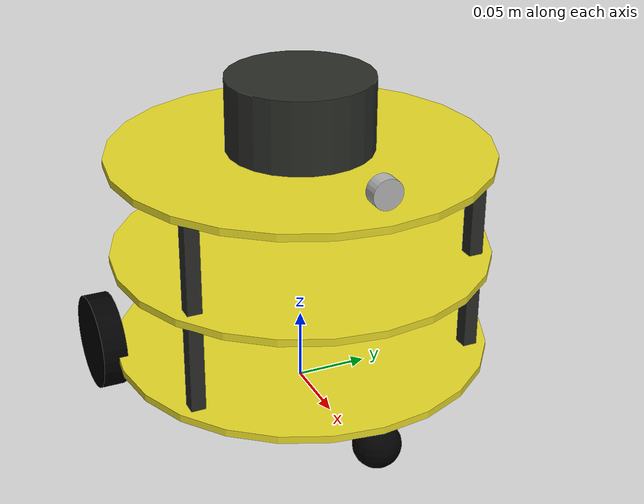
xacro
<?xml version="1.0"?>
<robot name="mrobot" xmlns:xacro="http://www.ros.org/wiki/xacro">

	<xacro:include filename="$(find mrobot_description)/urdf/mrobot_body.urdf.xacro" />
	<xacro:include filename="$(find mrobot_description)/urdf/rplidar.xacro" />

	<xacro:property name="rplidar_offset_x" value="0" />
	<xacro:property name="rplidar_offset_y" value="0" />
	<xacro:property name="rplidar_offset_z" value="0.028" />

	<!-- MRobot机器人平台-->
	<mrobot_body/>

	<!-- rplidar -->
	<joint name="rplidar_joint" type="fixed">
		<origin xyz="${rplidar_offset_x} ${rplidar_offset_y} ${rplidar_offset_z}" rpy="0 0 0" />
		<parent link="plate_2_link"/>
		<child link="laser_link"/>
	</joint>
	<xacro:rplidar prefix="laser"/>

</robot>

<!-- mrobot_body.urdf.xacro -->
<robot name="mrobot" xmlns:xacro="http://www.ros.org/wiki/xacro">

    <!-- Defining the colors used in this robot -->
    <material name="Black">
        <color rgba="0 0 0 1"/>
    </material>

    <material name="White">
        <color rgba="1 1 1 1"/>
    </material>

    <material name="Blue">
        <color rgba="0 0 1 1"/>
    </material>

    <material name="Red">
        <color rgba="1 0 0 1"/>
    </material>

    <!-- PROPERTY LIST -->
    <!--All units in m-kg-s-radians unit system -->
    <xacro:property name="M_PI" value="3.1415926535897931" />

    <!-- Main body length, width, height and mass -->
    <xacro:property name="base_mass"        value="0.5" />
    <xacro:property name="base_link_radius" value="0.13"/>
    <xacro:property name="base_link_length" value="0.005"/>

    <xacro:property name="motor_x" value="-0.05"/>

    <!-- Caster radius and mass -->
    <xacro:property name="caster_radius"          value="0.016" />
    <xacro:property name="caster_mass"            value="0.01" />
    <xacro:property name="caster_joint_origin_x"  value="-0.12" />

    <!-- Wheel radius, height and mass -->
    <xacro:property name="wheel_radius" value="0.033" />
    <xacro:property name="wheel_height" value="0.017" />
    <xacro:property name="wheel_mass"   value="0.1" />

    <!-- plate height and mass -->
    <xacro:property name="plate_mass"   value="0.05"/>
    <xacro:property name="plate_height" value="0.07"/>
    <xacro:property name="standoff_x"   value="0.12"/>
    <xacro:property name="standoff_y"   value="0.10"/>

    <!-- Macro for inertia matrix -->
    <xacro:macro name="sphere_inertial_matrix" params="m r">
        <inertial>
            <mass value="${m}" />
            <inertia ixx="${2*m*r*r/5}" ixy="0" ixz="0"
                iyy="${2*m*r*r/5}" iyz="0"
                izz="${2*m*r*r/5}" />
        </inertial>
    </xacro:macro>

    <xacro:macro name="cylinder_inertial_matrix" params="m r h">
        <inertial>
            <mass value="${m}" />
            <inertia ixx="${m*(3*r*r+h*h)/12}" ixy = "0" ixz = "0"
                iyy="${m*(3*r*r+h*h)/12}" iyz = "0"
                izz="${m*r*r/2}" />
        </inertial>
    </xacro:macro>

    <xacro:macro name="box_inertial_matrix" params="m w h d">
        <inertial>
            <mass value="${m}" />
            <inertia ixx="${m*(h*h+d*d)/12}" ixy = "0" ixz = "0"
                iyy="${m*(w*w+d*d)/12}" iyz = "0"
                izz="${m*(w*w+h*h)/12}" />
        </inertial>
    </xacro:macro>

    <!-- Macro for wheel joint -->
    <xacro:macro name="wheel" params="lr translateY">
        <!-- lr: left, right -->
        <link name="wheel_${lr}_link">
            <visual>
                <origin xyz="0 0 0" rpy="${M_PI/2} 0  0 " />
                <geometry>
                    <cylinder length="${wheel_height}" radius="${wheel_radius}" />
                </geometry>
                <material name="Black" />
            </visual>
            <collision>
                <origin xyz="0 0 0" rpy="${M_PI/2} 0 0 " />
                <geometry>
                    <cylinder length="${wheel_height}" radius="${wheel_radius}" />
                </geometry>
            </collision>
            <cylinder_inertial_matrix  m="${wheel_mass}" r="${wheel_radius}" h="${wheel_height}" />
        </link>

        <gazebo reference="wheel_${lr}_link">
            <material>Gazebo/Black</material>
        </gazebo>

        <joint name="base_to_wheel_${lr}_joint" type="continuous">
            <parent link="base_link"/>
            <child link="wheel_${lr}_link"/>
            <origin xyz="${motor_x} ${translateY * base_link_radius} 0" rpy="0 0 0" />
            <axis xyz="0 1 0" rpy="0  0" />
        </joint>

        <!-- Transmission is important to link the joints and the controller -->
        <transmission name="wheel_${lr}_joint_trans">
            <type>transmission_interface/SimpleTransmission</type>
            <joint name="base_to_wheel_${lr}_joint" />
            <actuator name="wheel_${lr}_joint_motor">
                <hardwareInterface>VelocityJointInterface</hardwareInterface>
                <mechanicalReduction>1</mechanicalReduction>
            </actuator>
        </transmission>
    </xacro:macro>

    <!-- Macro for caster joint -->
    <xacro:macro name="caster" params="fb translateX">
        <!-- fb: front, back -->
        <link name="${fb}_caster_link">
            <visual>
                <origin xyz="0 0 0 " rpy="0 0 0" />
                <geometry>
                    <sphere radius="${caster_radius}" />
                </geometry>
                <material name="Black" />
            </visual>
            <collision>
                <geometry>
                    <sphere radius="${caster_radius}" />
                </geometry>
                <origin xyz="0 0 0 " rpy="0 0 0" />
            </collision>
            <sphere_inertial_matrix  m="${caster_mass}" r="${caster_radius}" />
        </link>

        <gazebo reference="${fb}_caster_link">
            <material>Gazebo/Black</material>
        </gazebo>

        <joint name="base_to_${fb}_caster_joint" type="fixed">
            <parent link="base_link"/>
            <child link="${fb}_caster_link"/>
            <origin xyz="${translateX*caster_joint_origin_x} 0 ${-caster_radius}" rpy="0 0 0"/>
        </joint>
    </xacro:macro>

    <!-- Macro for plate joint -->
    <xacro:macro name="plate" params="num parent">
        <link name="plate_${num}_link">
            <cylinder_inertial_matrix  m="0.1" r="${base_link_radius}" h="${base_link_length}" />

            <visual>
                <origin xyz=" 0 0 0 " rpy="0 0 0" />
                <geometry>
                    <cylinder length="${base_link_length}" radius="${base_link_radius}"/>
                </geometry>
                <material name="yellow"/>
            </visual>

            <collision>
                <origin xyz="0.0 0.0 0.0" rpy="0 0 0" />
                <geometry>
                    <cylinder length="${base_link_length}" radius="${base_link_radius}"/>
                </geometry>
            </collision>
        </link>
        <gazebo reference="plate_${num}_link">
            <material>Gazebo/Blue</material>
        </gazebo>
        <joint name="plate_${num}_joint" type="fixed">
            <origin xyz="0 0 ${plate_height}" rpy="0 0 0" />
            <parent link="${parent}"/>
            <child link="plate_${num}_link" />
        </joint>
    </xacro:macro>

    <!-- Macro for standoff joint -->
    <xacro:macro name="mrobot_standoff_2in" params="parent number x_loc y_loc z_loc">
        <joint name="standoff_2in_${number}_joint" type="fixed">
            <origin xyz="${x_loc} ${y_loc} ${z_loc}" rpy="0 0 0" />
            <parent link="${parent}"/>
            <child link="standoff_2in_${number}_link" />
        </joint>

        <link name="standoff_2in_${number}_link">
            <inertial>
                <mass value="0.001" />
                <origin xyz="0 0 0" />
                <inertia ixx="0.0001" ixy="0.0" ixz="0.0"
          iyy="0.0001" iyz="0.0"
          izz="0.0001" />
            </inertial>

            <visual>
                <origin xyz=" 0 0 0 " rpy="0 0 0" />
                <geometry>
                    <box size="0.01 0.01 0.07" />
                </geometry>
                <material name="black">
                    <color rgba="0.16 0.17 0.15 0.9"/>
                </material>
            </visual>

            <collision>
                <origin xyz="0.0 0.0 0.0" rpy="0 0 0" />
                <geometry>
                    <box size="0.01 0.01 0.07" />
                </geometry>
            </collision>
        </link>
    </xacro:macro>

    <!-- BASE-FOOTPRINT -->
    <!-- base_footprint is a fictitious link(frame) that is on the ground right below base_link origin -->
    <xacro:macro name="mrobot_body">
        <link name="base_footprint">
            <visual>
                <origin xyz="0 0 0" rpy="0 0 0" />
                <geometry>
                    <box size="0.001 0.001 0.001" />
                </geometry>
            </visual>
        </link>

        <joint name="base_footprint_joint" type="fixed">
            <origin xyz="0 0 ${wheel_radius}" rpy="0 0 0" />
            <parent link="base_footprint"/>
            <child link="base_link" />
        </joint>

        <!-- BASE-LINK -->
        <!--Actual body/chassis of the robot-->
        <link name="base_link">
            <cylinder_inertial_matrix  m="${base_mass}" r="${base_link_radius}" h="${base_link_length}" />
            <visual>
                <origin xyz=" 0 0 0" rpy="0 0 0" />
                <geometry>
                    <cylinder length="${base_link_length}" radius="${base_link_radius}"/>
                </geometry>
                <material name="yellow" />
            </visual>

            <collision>
                <origin xyz="0 0 0" rpy="0 0 0" />
                <geometry>
                    <cylinder length="${base_link_length}" radius="${base_link_radius}"/>
                </geometry>
            </collision>
        </link>
        <gazebo reference="base_link">
            <material>Gazebo/Blue</material>
        </gazebo>

        <!-- Wheel Definitions -->
        <wheel lr="right"  translateY="1" />
        <wheel lr="left"  translateY="-1" />

        <!-- Casters Definitions -->
        <caster fb="front"  translateX="-1" />

        <!-- plates and standoff Definitions -->
        <mrobot_standoff_2in parent="base_link" number="1" x_loc="-${standoff_x/2 + 0.03}" y_loc="-${standoff_y - 0.03}" z_loc="${plate_height/2}"/>
        <mrobot_standoff_2in parent="base_link" number="2" x_loc="-${standoff_x/2 + 0.03}" y_loc="${standoff_y - 0.03}" z_loc="${plate_height/2}"/>
        <mrobot_standoff_2in parent="base_link" number="3" x_loc="${standoff_x/2}" y_loc="-${standoff_y}" z_loc="${plate_height/2}"/>
        <mrobot_standoff_2in parent="base_link" number="4" x_loc="${standoff_x/2}" y_loc="${standoff_y}" z_loc="${plate_height/2}"/>
        <mrobot_standoff_2in parent="standoff_2in_1_link" number="5" x_loc="0" y_loc="0" z_loc="${plate_height}"/>
        <mrobot_standoff_2in parent="standoff_2in_2_link" number="6" x_loc="0" y_loc="0" z_loc="${plate_height}"/>
        <mrobot_standoff_2in parent="standoff_2in_3_link" number="7" x_loc="0" y_loc="0" z_loc="${plate_height}"/>
        <mrobot_standoff_2in parent="standoff_2in_4_link" number="8" x_loc="0" y_loc="0" z_loc="${plate_height}"/>

        <!-- plate Definitions -->
        <plate num="1"  parent="base_link" />
        <plate num="2"  parent="plate_1_link" />

        <!-- controller -->
        <gazebo>
            <plugin name="differential_drive_controller" filename="libgazebo_ros_diff_drive.so">
                <rosDebugLevel>Debug</rosDebugLevel>
                <publishWheelTF>true</publishWheelTF>
                <robotNamespace>/</robotNamespace>
                <publishTf>1</publishTf>
                <publishWheelJointState>true</publishWheelJointState>
                <alwaysOn>true</alwaysOn>
                <updateRate>100.0</updateRate>
                <legacyMode>true</legacyMode>
                <leftJoint>base_to_wheel_left_joint</leftJoint>
                <rightJoint>base_to_wheel_right_joint</rightJoint>
                <wheelSeparation>${base_link_radius*2}</wheelSeparation>
                <wheelDiameter>${2*wheel_radius}</wheelDiameter>
                <broadcastTF>1</broadcastTF>
                <wheelTorque>30</wheelTorque>
                <wheelAcceleration>1.8</wheelAcceleration>
                <commandTopic>cmd_vel</commandTopic>
                <odometryFrame>odom</odometryFrame>
                <odometryTopic>odom</odometryTopic>
                <robotBaseFrame>base_footprint</robotBaseFrame>
            </plugin>
        </gazebo>

    <!-- s1_front -->
    <xacro:include filename="$(find gazebo_robot)/sensors/sonar/urdf/sonar.xacro"/>
    <xacro:sonar parent="plate_2_link" pos="s1" xyz="0.12 0 0.02 " rpy="0 -3.1415 3.1415" />

    </xacro:macro>
</robot>

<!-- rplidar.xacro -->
<robot xmlns:xacro="http://www.ros.org/wiki/xacro" name="laser">

	<xacro:macro name="rplidar" params="prefix:=laser frame:=laser topic:=scan robot_namespace=/ ">
		<link name="${prefix}_link">
			<inertial>
				<mass value="0.1" />
				<origin xyz="0 0 0" />
				<inertia ixx="0.01" ixy="0.0" ixz="0.0"
						 iyy="0.01" iyz="0.0"
						 izz="0.01" />
			</inertial>

			<visual>
				<origin xyz=" 0 0 0 " rpy="0 0 0" />
				<geometry>
					<cylinder length="0.05" radius="0.05"/>
				</geometry>
				<material name="black"/>
			</visual>

			<collision>
				<origin xyz="0.0 0.0 0.0" rpy="0 0 0" />
				<geometry>
					<cylinder length="0.06" radius="0.05"/>
				</geometry>
			</collision>
		</link>

	</xacro:macro>

</robot>

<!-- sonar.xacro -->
<robot name="sonar" xmlns:xacro="http://ros.org/wiki/xacro">
  <xacro:property name="sonar_radius" value="0.01"/>
  <xacro:property name="sonar_height" value="0.01"/>

  <xacro:macro name="sonar" params="parent pos xyz rpy">

    <link name="${pos}_sonar">
      <visual>
        <origin xyz="0 0 0" rpy="0 1.57 0"/>
        <geometry>
          <cylinder length="${sonar_height}" radius="${sonar_radius}"/>
        </geometry>
      </visual>
      <collision>
        <origin xyz="0 0 0" rpy="0 0 0"/>
        <geometry>
          <cylinder length="${sonar_height}" radius="${sonar_radius}"/>
        </geometry>
      </collision>
    </link>

    <joint name="${pos}_sonar_joint" type="fixed">
        <origin xyz="${xyz}" rpy="${rpy}"/>
        <parent link="${parent}"/>
        <child link="${pos}_sonar"/>
    </joint>

    <gazebo reference="${pos}_sonar">
      <sensor type="ray" name="sonar">
        <pose>0 0 0 0 0 0</pose>
        <visualize>false</visualize>
        <update_rate>50</update_rate>
        <ray>
          <scan>
            <horizontal>
              <samples>10</samples>
              <resolution>1</resolution>
              <min_angle>-0.785</min_angle>
              <max_angle>0.785</max_angle>
            </horizontal>
            <vertical>
              <samples>10</samples>
              <resolution>1</resolution>
              <min_angle>-0.25</min_angle>
              <max_angle>0.25</max_angle>
            </vertical>
          </scan>
          <range>
            <min>0.15</min>
            <max>0.5</max>
            <resolution>0.02</resolution>
          </range>
        </ray>
        <plugin filename="libgazebo_ros_range.so" name="gazebo_ros_range">
          <gaussianNoise>0.005</gaussianNoise>
          <alwaysOn>true</alwaysOn>
          <updateRate>50</updateRate>
          <topicName>${pos}_sonar</topicName>
          <frameName>${pos}_sonar</frameName>
          <radiation>ultrasound</radiation>
          <fov>0.5</fov>
        </plugin>
      </sensor>
    </gazebo>
  </xacro:macro>
</robot>
